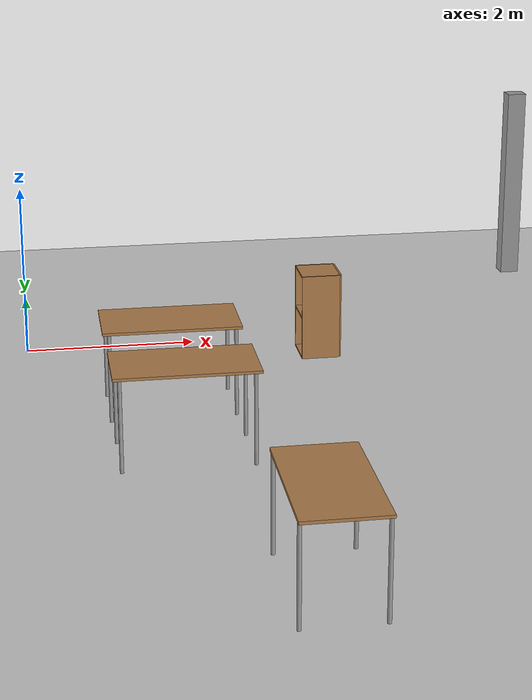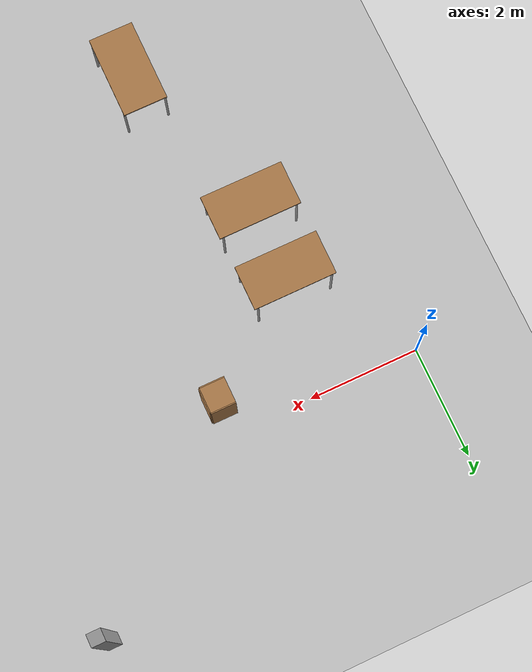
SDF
<sdf version="1.4">
 <world name="default">
  <model name="ground_plane">
   <static>1</static>
   <link name="link">
    <collision name="collision">
     <geometry><plane><normal>0 0 1</normal><size>100 100</size></plane></geometry>
     <surface><friction><ode><mu>100</mu><mu2>50</mu2></ode></friction></surface>
    </collision>
    <visual name="visual">
     <cast_shadows>0</cast_shadows>
     <geometry><plane><normal>0 0 1</normal><size>100 100</size></plane></geometry>
     <material>
      <script><uri>file://media/materials/scripts/gazebo.material</uri><name>Gazebo/Grey</name></script>
     </material>
    </visual>
    <velocity_decay><linear>0</linear><angular>0</angular></velocity_decay>
   </link>
  </model>
  <model name="table">
   <static>1</static>
   <link name="link">
    <collision name="surface">
     <pose>0 0 1 0 -0 0</pose>
     <geometry><box><size>1.5 0.8 0.03</size></box></geometry>
    </collision>
    <visual name="visual1">
     <pose>0 0 1 0 -0 0</pose>
     <geometry><box><size>1.5 0.8 0.03</size></box></geometry>
     <material>
      <script><uri>file://media/materials/scripts/gazebo.material</uri><name>Gazebo/Wood</name></script>
     </material>
    </visual>
    <collision name="front_left_leg">
     <pose>0.68 0.38 0.5 0 -0 0</pose>
     <geometry><cylinder><radius>0.02</radius><length>1</length></cylinder></geometry>
    </collision>
    <visual name="front_left_leg">
     <pose>0.68 0.38 0.5 0 -0 0</pose>
     <geometry><cylinder><radius>0.02</radius><length>1</length></cylinder></geometry>
     <material>
      <script><uri>file://media/materials/scripts/gazebo.material</uri><name>Gazebo/Grey</name></script>
     </material>
    </visual>
    <collision name="front_right_leg">
     <pose>0.68 -0.38 0.5 0 -0 0</pose>
     <geometry><cylinder><radius>0.02</radius><length>1</length></cylinder></geometry>
    </collision>
    <visual name="front_right_leg">
     <pose>0.68 -0.38 0.5 0 -0 0</pose>
     <geometry><cylinder><radius>0.02</radius><length>1</length></cylinder></geometry>
     <material>
      <script><uri>file://media/materials/scripts/gazebo.material</uri><name>Gazebo/Grey</name></script>
     </material>
    </visual>
    <collision name="back_right_leg">
     <pose>-0.68 -0.38 0.5 0 -0 0</pose>
     <geometry><cylinder><radius>0.02</radius><length>1</length></cylinder></geometry>
    </collision>
    <visual name="back_right_leg">
     <pose>-0.68 -0.38 0.5 0 -0 0</pose>
     <geometry><cylinder><radius>0.02</radius><length>1</length></cylinder></geometry>
     <material>
      <script><uri>file://media/materials/scripts/gazebo.material</uri><name>Gazebo/Grey</name></script>
     </material>
    </visual>
    <collision name="back_left_leg">
     <pose>-0.68 0.38 0.5 0 -0 0</pose>
     <geometry><cylinder><radius>0.02</radius><length>1</length></cylinder></geometry>
    </collision>
    <visual name="back_left_leg">
     <pose>-0.68 0.38 0.5 0 -0 0</pose>
     <geometry><cylinder><radius>0.02</radius><length>1</length></cylinder></geometry>
     <material>
      <script><uri>file://media/materials/scripts/gazebo.material</uri><name>Gazebo/Grey</name></script>
     </material>
    </visual>
    <velocity_decay><linear>0</linear><angular>0</angular></velocity_decay>
   </link>
   <pose>2.471 -6.373 0 0 -0 1.57</pose>
  </model>
  <model name="cabinet">
   <static>1</static>
   <link name="cabinet_bottom_plate">
    <inertial>
     <pose>0 0 -1 0 -0 0</pose>
     <inertia><ixx>2.05</ixx><ixy>0</ixy><ixz>0</ixz><iyy>2.05</iyy><iyz>0</iyz><izz>2.05</izz></inertia>
     <mass>25</mass>
    </inertial>
    <collision name="cabinet_bottom_plate_geom">
     <pose>0 0 0.01 0 -0 0</pose>
     <geometry><box><size>0.45 0.45 0.02</size></box></geometry>
    </collision>
    <visual name="cabinet_bottom_plate_geom_visual">
     <pose>0 0 0.01 0 -0 0</pose>
     <geometry><box><size>0.45 0.45 0.02</size></box></geometry>
     <material>
      <script><uri>file://media/materials/scripts/gazebo.material</uri><name>Gazebo/Wood</name></script>
     </material>
    </visual>
    <collision name="cabinet_bottom_plate_geom_cabinet_back_plate">
     <pose>0.235 0 0.51 0 -0 0</pose>
     <geometry><box><size>0.02 0.45 1.02</size></box></geometry>
    </collision>
    <visual name="cabinet_bottom_plate_geom_cabinet_back_plate_visual">
     <pose>0.235 0 0.51 0 -0 0</pose>
     <geometry><box><size>0.02 0.45 1.02</size></box></geometry>
     <material>
      <script><uri>file://media/materials/scripts/gazebo.material</uri><name>Gazebo/Wood</name></script>
     </material>
    </visual>
    <collision name="cabinet_bottom_plate_geom_cabinet_left_plate">
     <pose>0 0.235 0.51 0 -0 0</pose>
     <geometry><box><size>0.45 0.02 1.02</size></box></geometry>
    </collision>
    <visual name="cabinet_bottom_plate_geom_cabinet_left_plate_visual">
     <pose>0 0.235 0.51 0 -0 0</pose>
     <geometry><box><size>0.45 0.02 1.02</size></box></geometry>
     <material>
      <script><uri>file://media/materials/scripts/gazebo.material</uri><name>Gazebo/Wood</name></script>
     </material>
    </visual>
    <collision name="cabinet_bottom_plate_geom_cabinet_middle_plate">
     <pose>0 0 0.51 0 -0 0</pose>
     <geometry><box><size>0.45 0.45 0.02</size></box></geometry>
    </collision>
    <visual name="cabinet_bottom_plate_geom_cabinet_middle_plate_visual">
     <pose>0 0 0.51 0 -0 0</pose>
     <geometry><box><size>0.45 0.45 0.02</size></box></geometry>
     <material>
      <script><uri>file://media/materials/scripts/gazebo.material</uri><name>Gazebo/Wood</name></script>
     </material>
    </visual>
    <collision name="cabinet_bottom_plate_geom_cabinet_right_plate">
     <pose>0 -0.235 0.51 0 -0 0</pose>
     <geometry><box><size>0.45 0.02 1.02</size></box></geometry>
    </collision>
    <visual name="cabinet_bottom_plate_geom_cabinet_right_plate_visual">
     <pose>0 -0.235 0.51 0 -0 0</pose>
     <geometry><box><size>0.45 0.02 1.02</size></box></geometry>
     <material>
      <script><uri>file://media/materials/scripts/gazebo.material</uri><name>Gazebo/Wood</name></script>
     </material>
    </visual>
    <collision name="cabinet_bottom_plate_geom_cabinet_top_plate">
     <pose>0 0 1.01 0 -0 0</pose>
     <geometry><box><size>0.45 0.45 0.02</size></box></geometry>
    </collision>
    <visual name="cabinet_bottom_plate_geom_cabinet_top_plate_visual">
     <pose>0 0 1.01 0 -0 0</pose>
     <geometry><box><size>0.45 0.45 0.02</size></box></geometry>
     <material>
      <script><uri>file://media/materials/scripts/gazebo.material</uri><name>Gazebo/Wood</name></script>
     </material>
    </visual>
    <velocity_decay><linear>0</linear><angular>0</angular></velocity_decay>
   </link>
   <pose>3.443 -0.556 0 0 -0 0</pose>
  </model>
  <model name="table_1">
   <static>1</static>
   <link name="link">
    <collision name="surface">
     <pose>0 0 1 0 -0 0</pose>
     <geometry><box><size>1.5 0.8 0.03</size></box></geometry>
    </collision>
    <visual name="visual1">
     <pose>0 0 1 0 -0 0</pose>
     <geometry><box><size>1.5 0.8 0.03</size></box></geometry>
     <material>
      <script><uri>file://media/materials/scripts/gazebo.material</uri><name>Gazebo/Wood</name></script>
     </material>
    </visual>
    <collision name="front_left_leg">
     <pose>0.68 0.38 0.5 0 -0 0</pose>
     <geometry><cylinder><radius>0.02</radius><length>1</length></cylinder></geometry>
    </collision>
    <visual name="front_left_leg">
     <pose>0.68 0.38 0.5 0 -0 0</pose>
     <geometry><cylinder><radius>0.02</radius><length>1</length></cylinder></geometry>
     <material>
      <script><uri>file://media/materials/scripts/gazebo.material</uri><name>Gazebo/Grey</name></script>
     </material>
    </visual>
    <collision name="front_right_leg">
     <pose>0.68 -0.38 0.5 0 -0 0</pose>
     <geometry><cylinder><radius>0.02</radius><length>1</length></cylinder></geometry>
    </collision>
    <visual name="front_right_leg">
     <pose>0.68 -0.38 0.5 0 -0 0</pose>
     <geometry><cylinder><radius>0.02</radius><length>1</length></cylinder></geometry>
     <material>
      <script><uri>file://media/materials/scripts/gazebo.material</uri><name>Gazebo/Grey</name></script>
     </material>
    </visual>
    <collision name="back_right_leg">
     <pose>-0.68 -0.38 0.5 0 -0 0</pose>
     <geometry><cylinder><radius>0.02</radius><length>1</length></cylinder></geometry>
    </collision>
    <visual name="back_right_leg">
     <pose>-0.68 -0.38 0.5 0 -0 0</pose>
     <geometry><cylinder><radius>0.02</radius><length>1</length></cylinder></geometry>
     <material>
      <script><uri>file://media/materials/scripts/gazebo.material</uri><name>Gazebo/Grey</name></script>
     </material>
    </visual>
    <collision name="back_left_leg">
     <pose>-0.68 0.38 0.5 0 -0 0</pose>
     <geometry><cylinder><radius>0.02</radius><length>1</length></cylinder></geometry>
    </collision>
    <visual name="back_left_leg">
     <pose>-0.68 0.38 0.5 0 -0 0</pose>
     <geometry><cylinder><radius>0.02</radius><length>1</length></cylinder></geometry>
     <material>
      <script><uri>file://media/materials/scripts/gazebo.material</uri><name>Gazebo/Grey</name></script>
     </material>
    </visual>
    <velocity_decay><linear>0</linear><angular>0</angular></velocity_decay>
   </link>
   <pose>1.554 -3.348 0 0 -0 0</pose>
  </model>
  <model name="table_7">
   <static>1</static>
   <link name="link">
    <collision name="surface">
     <pose>0 0 1 0 -0 0</pose>
     <geometry><box><size>1.5 0.8 0.03</size></box></geometry>
    </collision>
    <visual name="visual1">
     <pose>0 0 1 0 -0 0</pose>
     <geometry><box><size>1.5 0.8 0.03</size></box></geometry>
     <material>
      <script><uri>file://media/materials/scripts/gazebo.material</uri><name>Gazebo/Wood</name></script>
     </material>
    </visual>
    <collision name="front_left_leg">
     <pose>0.68 0.38 0.5 0 -0 0</pose>
     <geometry><cylinder><radius>0.02</radius><length>1</length></cylinder></geometry>
    </collision>
    <visual name="front_left_leg">
     <pose>0.68 0.38 0.5 0 -0 0</pose>
     <geometry><cylinder><radius>0.02</radius><length>1</length></cylinder></geometry>
     <material>
      <script><uri>file://media/materials/scripts/gazebo.material</uri><name>Gazebo/Grey</name></script>
     </material>
    </visual>
    <collision name="front_right_leg">
     <pose>0.68 -0.38 0.5 0 -0 0</pose>
     <geometry><cylinder><radius>0.02</radius><length>1</length></cylinder></geometry>
    </collision>
    <visual name="front_right_leg">
     <pose>0.68 -0.38 0.5 0 -0 0</pose>
     <geometry><cylinder><radius>0.02</radius><length>1</length></cylinder></geometry>
     <material>
      <script><uri>file://media/materials/scripts/gazebo.material</uri><name>Gazebo/Grey</name></script>
     </material>
    </visual>
    <collision name="back_right_leg">
     <pose>-0.68 -0.38 0.5 0 -0 0</pose>
     <geometry><cylinder><radius>0.02</radius><length>1</length></cylinder></geometry>
    </collision>
    <visual name="back_right_leg">
     <pose>-0.68 -0.38 0.5 0 -0 0</pose>
     <geometry><cylinder><radius>0.02</radius><length>1</length></cylinder></geometry>
     <material>
      <script><uri>file://media/materials/scripts/gazebo.material</uri><name>Gazebo/Grey</name></script>
     </material>
    </visual>
    <collision name="back_left_leg">
     <pose>-0.68 0.38 0.5 0 -0 0</pose>
     <geometry><cylinder><radius>0.02</radius><length>1</length></cylinder></geometry>
    </collision>
    <visual name="back_left_leg">
     <pose>-0.68 0.38 0.5 0 -0 0</pose>
     <geometry><cylinder><radius>0.02</radius><length>1</length></cylinder></geometry>
     <material>
      <script><uri>file://media/materials/scripts/gazebo.material</uri><name>Gazebo/Grey</name></script>
     </material>
    </visual>
    <velocity_decay><linear>0</linear><angular>0</angular></velocity_decay>
   </link>
   <pose>1.53747 -2 0 0 -0 0</pose>
  </model>
  <model name="Teknopark_v_1_2.sdf">
   <link name="Wall_0">
    <collision name="Wall_0_Collision">
     <geometry><box><size>0.24 0.22 2.5</size></box></geometry>
     <pose>0 0 1.25 0 -0 0</pose>
    </collision>
    <visual name="Wall_0_Visual">
     <pose>0 0 1.25 0 -0 0</pose>
     <geometry><box><size>0.24 0.22 2.5</size></box></geometry>
     <material>
      <script><uri>file://media/materials/scripts/gazebo.material</uri><name>Gazebo/Grey</name></script>
     </material>
    </visual>
    <velocity_decay><linear>0</linear><angular>0</angular></velocity_decay>
    <pose>6.66957 2.27524 0 0 -0 0</pose>
   </link>
   <static>1</static>
  </model>
 </world>
</sdf>
